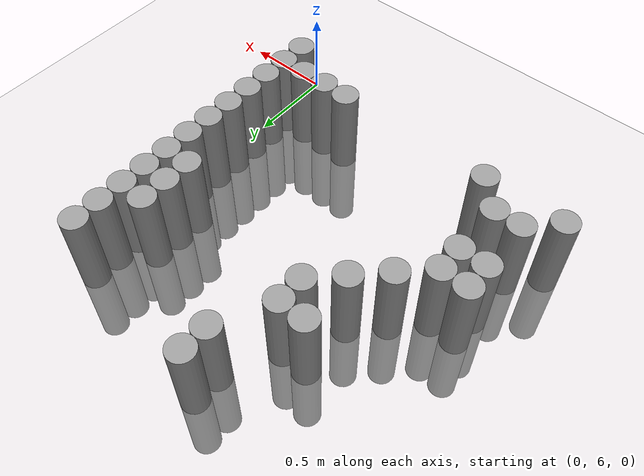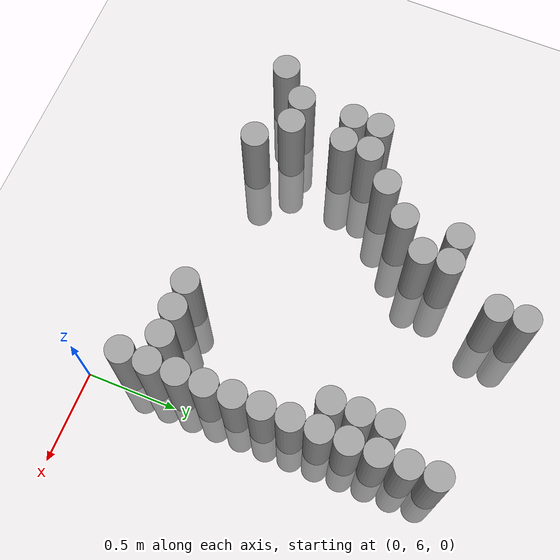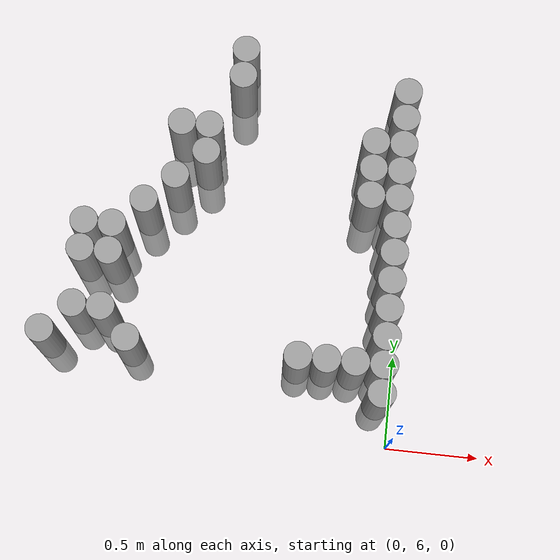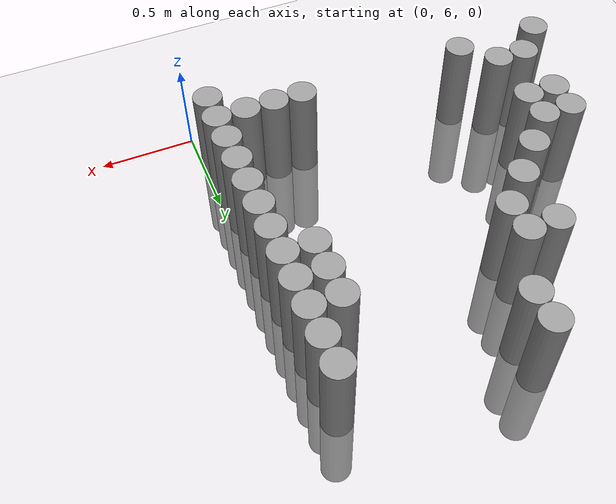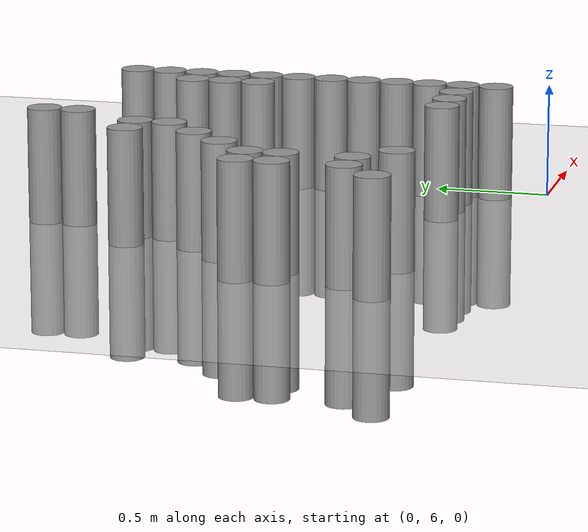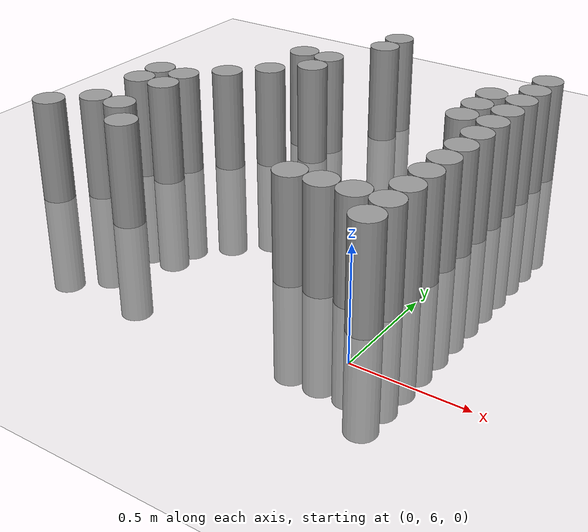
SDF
<sdf version="1.6">
 <world name="default">
  <model name="ground_plane">
   <static>1</static>
   <link name="link">
    <collision name="collision">
     <geometry><plane><normal>0 0 1</normal><size>100 100</size></plane></geometry>
     <surface><friction><ode><mu>100</mu><mu2>50</mu2></ode></friction></surface>
    </collision>
    <visual name="visual">
     <cast_shadows>0</cast_shadows>
     <geometry><plane><normal>0 0 1</normal><size>100 100</size></plane></geometry>
     <material>
      <script><uri>file://media/materials/scripts/gazebo.material</uri><name>Gazebo/Grey</name></script>
     </material>
    </visual>
   </link>
  </model>
  <model name="unit_cylinder_182">
   <pose>-1.875000 6.375000 0.000000 0.000000 0.000000 0.000000</pose>
   <link name="link">
    <inertial>
     <mass>1</mass>
     <inertia><ixx>0.145833</ixx><ixy>0</ixy><ixz>0</ixz><iyy>0.145833</iyy><iyz>0</iyz><izz>0.125</izz></inertia>
    </inertial>
    <collision name="collision">
     <geometry><cylinder><radius>0.075000</radius><length>1</length></cylinder></geometry>
    </collision>
    <visual name="visual">
     <geometry><cylinder><radius>0.075000</radius><length>1</length></cylinder></geometry>
     <material>
      <script><name>Gazebo/Grey</name><uri>file://media/materials/scripts/gazebo.material</uri></script>
     </material>
    </visual>
   </link>
  </model>
  <model name="unit_cylinder_184">
   <pose>-1.725000 6.525000 0.000000 0.000000 0.000000 0.000000</pose>
   <link name="link">
    <inertial>
     <mass>1</mass>
     <inertia><ixx>0.145833</ixx><ixy>0</ixy><ixz>0</ixz><iyy>0.145833</iyy><iyz>0</iyz><izz>0.125</izz></inertia>
    </inertial>
    <collision name="collision">
     <geometry><cylinder><radius>0.075000</radius><length>1</length></cylinder></geometry>
    </collision>
    <visual name="visual">
     <geometry><cylinder><radius>0.075000</radius><length>1</length></cylinder></geometry>
     <material>
      <script><name>Gazebo/Grey</name><uri>file://media/materials/scripts/gazebo.material</uri></script>
     </material>
    </visual>
   </link>
  </model>
  <model name="unit_cylinder_185">
   <pose>-1.725000 6.825000 0.000000 0.000000 0.000000 0.000000</pose>
   <link name="link">
    <inertial>
     <mass>1</mass>
     <inertia><ixx>0.145833</ixx><ixy>0</ixy><ixz>0</ixz><iyy>0.145833</iyy><iyz>0</iyz><izz>0.125</izz></inertia>
    </inertial>
    <collision name="collision">
     <geometry><cylinder><radius>0.075000</radius><length>1</length></cylinder></geometry>
    </collision>
    <visual name="visual">
     <geometry><cylinder><radius>0.075000</radius><length>1</length></cylinder></geometry>
     <material>
      <script><name>Gazebo/Grey</name><uri>file://media/materials/scripts/gazebo.material</uri></script>
     </material>
    </visual>
   </link>
  </model>
  <model name="unit_cylinder_186">
   <pose>-1.725000 6.975000 0.000000 0.000000 0.000000 0.000000</pose>
   <link name="link">
    <inertial>
     <mass>1</mass>
     <inertia><ixx>0.145833</ixx><ixy>0</ixy><ixz>0</ixz><iyy>0.145833</iyy><iyz>0</iyz><izz>0.125</izz></inertia>
    </inertial>
    <collision name="collision">
     <geometry><cylinder><radius>0.075000</radius><length>1</length></cylinder></geometry>
    </collision>
    <visual name="visual">
     <geometry><cylinder><radius>0.075000</radius><length>1</length></cylinder></geometry>
     <material>
      <script><name>Gazebo/Grey</name><uri>file://media/materials/scripts/gazebo.material</uri></script>
     </material>
    </visual>
   </link>
  </model>
  <model name="unit_cylinder_188">
   <pose>-1.575000 6.525000 0.000000 0.000000 0.000000 0.000000</pose>
   <link name="link">
    <inertial>
     <mass>1</mass>
     <inertia><ixx>0.145833</ixx><ixy>0</ixy><ixz>0</ixz><iyy>0.145833</iyy><iyz>0</iyz><izz>0.125</izz></inertia>
    </inertial>
    <collision name="collision">
     <geometry><cylinder><radius>0.075000</radius><length>1</length></cylinder></geometry>
    </collision>
    <visual name="visual">
     <geometry><cylinder><radius>0.075000</radius><length>1</length></cylinder></geometry>
     <material>
      <script><name>Gazebo/Grey</name><uri>file://media/materials/scripts/gazebo.material</uri></script>
     </material>
    </visual>
   </link>
  </model>
  <model name="unit_cylinder_189">
   <pose>-1.575000 6.825000 0.000000 0.000000 0.000000 0.000000</pose>
   <link name="link">
    <inertial>
     <mass>1</mass>
     <inertia><ixx>0.145833</ixx><ixy>0</ixy><ixz>0</ixz><iyy>0.145833</iyy><iyz>0</iyz><izz>0.125</izz></inertia>
    </inertial>
    <collision name="collision">
     <geometry><cylinder><radius>0.075000</radius><length>1</length></cylinder></geometry>
    </collision>
    <visual name="visual">
     <geometry><cylinder><radius>0.075000</radius><length>1</length></cylinder></geometry>
     <material>
      <script><name>Gazebo/Grey</name><uri>file://media/materials/scripts/gazebo.material</uri></script>
     </material>
    </visual>
   </link>
  </model>
  <model name="unit_cylinder_190">
   <pose>-1.575000 6.975000 0.000000 0.000000 0.000000 0.000000</pose>
   <link name="link">
    <inertial>
     <mass>1</mass>
     <inertia><ixx>0.145833</ixx><ixy>0</ixy><ixz>0</ixz><iyy>0.145833</iyy><iyz>0</iyz><izz>0.125</izz></inertia>
    </inertial>
    <collision name="collision">
     <geometry><cylinder><radius>0.075000</radius><length>1</length></cylinder></geometry>
    </collision>
    <visual name="visual">
     <geometry><cylinder><radius>0.075000</radius><length>1</length></cylinder></geometry>
     <material>
      <script><name>Gazebo/Grey</name><uri>file://media/materials/scripts/gazebo.material</uri></script>
     </material>
    </visual>
   </link>
  </model>
  <model name="unit_cylinder_191">
   <pose>-1.425000 6.375000 0.000000 0.000000 0.000000 0.000000</pose>
   <link name="link">
    <inertial>
     <mass>1</mass>
     <inertia><ixx>0.145833</ixx><ixy>0</ixy><ixz>0</ixz><iyy>0.145833</iyy><iyz>0</iyz><izz>0.125</izz></inertia>
    </inertial>
    <collision name="collision">
     <geometry><cylinder><radius>0.075000</radius><length>1</length></cylinder></geometry>
    </collision>
    <visual name="visual">
     <geometry><cylinder><radius>0.075000</radius><length>1</length></cylinder></geometry>
     <material>
      <script><name>Gazebo/Grey</name><uri>file://media/materials/scripts/gazebo.material</uri></script>
     </material>
    </visual>
   </link>
  </model>
  <model name="unit_cylinder_192">
   <pose>-1.425000 7.125000 0.000000 0.000000 0.000000 0.000000</pose>
   <link name="link">
    <inertial>
     <mass>1</mass>
     <inertia><ixx>0.145833</ixx><ixy>0</ixy><ixz>0</ixz><iyy>0.145833</iyy><iyz>0</iyz><izz>0.125</izz></inertia>
    </inertial>
    <collision name="collision">
     <geometry><cylinder><radius>0.075000</radius><length>1</length></cylinder></geometry>
    </collision>
    <visual name="visual">
     <geometry><cylinder><radius>0.075000</radius><length>1</length></cylinder></geometry>
     <material>
      <script><name>Gazebo/Grey</name><uri>file://media/materials/scripts/gazebo.material</uri></script>
     </material>
    </visual>
   </link>
  </model>
  <model name="unit_cylinder_193">
   <pose>-1.275000 7.275000 0.000000 0.000000 0.000000 0.000000</pose>
   <link name="link">
    <inertial>
     <mass>1</mass>
     <inertia><ixx>0.145833</ixx><ixy>0</ixy><ixz>0</ixz><iyy>0.145833</iyy><iyz>0</iyz><izz>0.125</izz></inertia>
    </inertial>
    <collision name="collision">
     <geometry><cylinder><radius>0.075000</radius><length>1</length></cylinder></geometry>
    </collision>
    <visual name="visual">
     <geometry><cylinder><radius>0.075000</radius><length>1</length></cylinder></geometry>
     <material>
      <script><name>Gazebo/Grey</name><uri>file://media/materials/scripts/gazebo.material</uri></script>
     </material>
    </visual>
   </link>
  </model>
  <model name="unit_cylinder_194">
   <pose>-1.275000 7.575000 0.000000 0.000000 0.000000 0.000000</pose>
   <link name="link">
    <inertial>
     <mass>1</mass>
     <inertia><ixx>0.145833</ixx><ixy>0</ixy><ixz>0</ixz><iyy>0.145833</iyy><iyz>0</iyz><izz>0.125</izz></inertia>
    </inertial>
    <collision name="collision">
     <geometry><cylinder><radius>0.075000</radius><length>1</length></cylinder></geometry>
    </collision>
    <visual name="visual">
     <geometry><cylinder><radius>0.075000</radius><length>1</length></cylinder></geometry>
     <material>
      <script><name>Gazebo/Grey</name><uri>file://media/materials/scripts/gazebo.material</uri></script>
     </material>
    </visual>
   </link>
  </model>
  <model name="unit_cylinder_195">
   <pose>-1.125000 7.425000 0.000000 0.000000 0.000000 0.000000</pose>
   <link name="link">
    <inertial>
     <mass>1</mass>
     <inertia><ixx>0.145833</ixx><ixy>0</ixy><ixz>0</ixz><iyy>0.145833</iyy><iyz>0</iyz><izz>0.125</izz></inertia>
    </inertial>
    <collision name="collision">
     <geometry><cylinder><radius>0.075000</radius><length>1</length></cylinder></geometry>
    </collision>
    <visual name="visual">
     <geometry><cylinder><radius>0.075000</radius><length>1</length></cylinder></geometry>
     <material>
      <script><name>Gazebo/Grey</name><uri>file://media/materials/scripts/gazebo.material</uri></script>
     </material>
    </visual>
   </link>
  </model>
  <model name="unit_cylinder_196">
   <pose>-1.125000 7.575000 0.000000 0.000000 0.000000 0.000000</pose>
   <link name="link">
    <inertial>
     <mass>1</mass>
     <inertia><ixx>0.145833</ixx><ixy>0</ixy><ixz>0</ixz><iyy>0.145833</iyy><iyz>0</iyz><izz>0.125</izz></inertia>
    </inertial>
    <collision name="collision">
     <geometry><cylinder><radius>0.075000</radius><length>1</length></cylinder></geometry>
    </collision>
    <visual name="visual">
     <geometry><cylinder><radius>0.075000</radius><length>1</length></cylinder></geometry>
     <material>
      <script><name>Gazebo/Grey</name><uri>file://media/materials/scripts/gazebo.material</uri></script>
     </material>
    </visual>
   </link>
  </model>
  <model name="unit_cylinder_197">
   <pose>-0.975000 7.875000 0.000000 0.000000 0.000000 0.000000</pose>
   <link name="link">
    <inertial>
     <mass>1</mass>
     <inertia><ixx>0.145833</ixx><ixy>0</ixy><ixz>0</ixz><iyy>0.145833</iyy><iyz>0</iyz><izz>0.125</izz></inertia>
    </inertial>
    <collision name="collision">
     <geometry><cylinder><radius>0.075000</radius><length>1</length></cylinder></geometry>
    </collision>
    <visual name="visual">
     <geometry><cylinder><radius>0.075000</radius><length>1</length></cylinder></geometry>
     <material>
      <script><name>Gazebo/Grey</name><uri>file://media/materials/scripts/gazebo.material</uri></script>
     </material>
    </visual>
   </link>
  </model>
  <model name="unit_cylinder_198">
   <pose>-0.975000 8.025000 0.000000 0.000000 0.000000 0.000000</pose>
   <link name="link">
    <inertial>
     <mass>1</mass>
     <inertia><ixx>0.145833</ixx><ixy>0</ixy><ixz>0</ixz><iyy>0.145833</iyy><iyz>0</iyz><izz>0.125</izz></inertia>
    </inertial>
    <collision name="collision">
     <geometry><cylinder><radius>0.075000</radius><length>1</length></cylinder></geometry>
    </collision>
    <visual name="visual">
     <geometry><cylinder><radius>0.075000</radius><length>1</length></cylinder></geometry>
     <material>
      <script><name>Gazebo/Grey</name><uri>file://media/materials/scripts/gazebo.material</uri></script>
     </material>
    </visual>
   </link>
  </model>
  <model name="unit_cylinder_212">
   <pose>-0.525000 6.375000 0.000000 0.000000 0.000000 0.000000</pose>
   <link name="link">
    <inertial>
     <mass>1</mass>
     <inertia><ixx>0.145833</ixx><ixy>0</ixy><ixz>0</ixz><iyy>0.145833</iyy><iyz>0</iyz><izz>0.125</izz></inertia>
    </inertial>
    <collision name="collision">
     <geometry><cylinder><radius>0.075000</radius><length>1</length></cylinder></geometry>
    </collision>
    <visual name="visual">
     <geometry><cylinder><radius>0.075000</radius><length>1</length></cylinder></geometry>
     <material>
      <script><name>Gazebo/Grey</name><uri>file://media/materials/scripts/gazebo.material</uri></script>
     </material>
    </visual>
   </link>
  </model>
  <model name="unit_cylinder_216">
   <pose>-0.375000 6.375000 0.000000 0.000000 0.000000 0.000000</pose>
   <link name="link">
    <inertial>
     <mass>1</mass>
     <inertia><ixx>0.145833</ixx><ixy>0</ixy><ixz>0</ixz><iyy>0.145833</iyy><iyz>0</iyz><izz>0.125</izz></inertia>
    </inertial>
    <collision name="collision">
     <geometry><cylinder><radius>0.075000</radius><length>1</length></cylinder></geometry>
    </collision>
    <visual name="visual">
     <geometry><cylinder><radius>0.075000</radius><length>1</length></cylinder></geometry>
     <material>
      <script><name>Gazebo/Grey</name><uri>file://media/materials/scripts/gazebo.material</uri></script>
     </material>
    </visual>
   </link>
  </model>
  <model name="unit_cylinder_223">
   <pose>-0.225000 6.375000 0.000000 0.000000 0.000000 0.000000</pose>
   <link name="link">
    <inertial>
     <mass>1</mass>
     <inertia><ixx>0.145833</ixx><ixy>0</ixy><ixz>0</ixz><iyy>0.145833</iyy><iyz>0</iyz><izz>0.125</izz></inertia>
    </inertial>
    <collision name="collision">
     <geometry><cylinder><radius>0.075000</radius><length>1</length></cylinder></geometry>
    </collision>
    <visual name="visual">
     <geometry><cylinder><radius>0.075000</radius><length>1</length></cylinder></geometry>
     <material>
      <script><name>Gazebo/Grey</name><uri>file://media/materials/scripts/gazebo.material</uri></script>
     </material>
    </visual>
   </link>
  </model>
  <model name="unit_cylinder_224">
   <pose>-0.225000 7.275000 0.000000 0.000000 0.000000 0.000000</pose>
   <link name="link">
    <inertial>
     <mass>1</mass>
     <inertia><ixx>0.145833</ixx><ixy>0</ixy><ixz>0</ixz><iyy>0.145833</iyy><iyz>0</iyz><izz>0.125</izz></inertia>
    </inertial>
    <collision name="collision">
     <geometry><cylinder><radius>0.075000</radius><length>1</length></cylinder></geometry>
    </collision>
    <visual name="visual">
     <geometry><cylinder><radius>0.075000</radius><length>1</length></cylinder></geometry>
     <material>
      <script><name>Gazebo/Grey</name><uri>file://media/materials/scripts/gazebo.material</uri></script>
     </material>
    </visual>
   </link>
  </model>
  <model name="unit_cylinder_225">
   <pose>-0.225000 7.425000 0.000000 0.000000 0.000000 0.000000</pose>
   <link name="link">
    <inertial>
     <mass>1</mass>
     <inertia><ixx>0.145833</ixx><ixy>0</ixy><ixz>0</ixz><iyy>0.145833</iyy><iyz>0</iyz><izz>0.125</izz></inertia>
    </inertial>
    <collision name="collision">
     <geometry><cylinder><radius>0.075000</radius><length>1</length></cylinder></geometry>
    </collision>
    <visual name="visual">
     <geometry><cylinder><radius>0.075000</radius><length>1</length></cylinder></geometry>
     <material>
      <script><name>Gazebo/Grey</name><uri>file://media/materials/scripts/gazebo.material</uri></script>
     </material>
    </visual>
   </link>
  </model>
  <model name="unit_cylinder_226">
   <pose>-0.225000 7.575000 0.000000 0.000000 0.000000 0.000000</pose>
   <link name="link">
    <inertial>
     <mass>1</mass>
     <inertia><ixx>0.145833</ixx><ixy>0</ixy><ixz>0</ixz><iyy>0.145833</iyy><iyz>0</iyz><izz>0.125</izz></inertia>
    </inertial>
    <collision name="collision">
     <geometry><cylinder><radius>0.075000</radius><length>1</length></cylinder></geometry>
    </collision>
    <visual name="visual">
     <geometry><cylinder><radius>0.075000</radius><length>1</length></cylinder></geometry>
     <material>
      <script><name>Gazebo/Grey</name><uri>file://media/materials/scripts/gazebo.material</uri></script>
     </material>
    </visual>
   </link>
  </model>
  <model name="unit_cylinder_238">
   <pose>-0.075000 6.225000 0.000000 0.000000 0.000000 0.000000</pose>
   <link name="link">
    <inertial>
     <mass>1</mass>
     <inertia><ixx>0.145833</ixx><ixy>0</ixy><ixz>0</ixz><iyy>0.145833</iyy><iyz>0</iyz><izz>0.125</izz></inertia>
    </inertial>
    <collision name="collision">
     <geometry><cylinder><radius>0.075000</radius><length>1</length></cylinder></geometry>
    </collision>
    <visual name="visual">
     <geometry><cylinder><radius>0.075000</radius><length>1</length></cylinder></geometry>
     <material>
      <script><name>Gazebo/Grey</name><uri>file://media/materials/scripts/gazebo.material</uri></script>
     </material>
    </visual>
   </link>
  </model>
  <model name="unit_cylinder_239">
   <pose>-0.075000 6.375000 0.000000 0.000000 0.000000 0.000000</pose>
   <link name="link">
    <inertial>
     <mass>1</mass>
     <inertia><ixx>0.145833</ixx><ixy>0</ixy><ixz>0</ixz><iyy>0.145833</iyy><iyz>0</iyz><izz>0.125</izz></inertia>
    </inertial>
    <collision name="collision">
     <geometry><cylinder><radius>0.075000</radius><length>1</length></cylinder></geometry>
    </collision>
    <visual name="visual">
     <geometry><cylinder><radius>0.075000</radius><length>1</length></cylinder></geometry>
     <material>
      <script><name>Gazebo/Grey</name><uri>file://media/materials/scripts/gazebo.material</uri></script>
     </material>
    </visual>
   </link>
  </model>
  <model name="unit_cylinder_240">
   <pose>-0.075000 6.525000 0.000000 0.000000 0.000000 0.000000</pose>
   <link name="link">
    <inertial>
     <mass>1</mass>
     <inertia><ixx>0.145833</ixx><ixy>0</ixy><ixz>0</ixz><iyy>0.145833</iyy><iyz>0</iyz><izz>0.125</izz></inertia>
    </inertial>
    <collision name="collision">
     <geometry><cylinder><radius>0.075000</radius><length>1</length></cylinder></geometry>
    </collision>
    <visual name="visual">
     <geometry><cylinder><radius>0.075000</radius><length>1</length></cylinder></geometry>
     <material>
      <script><name>Gazebo/Grey</name><uri>file://media/materials/scripts/gazebo.material</uri></script>
     </material>
    </visual>
   </link>
  </model>
  <model name="unit_cylinder_241">
   <pose>-0.075000 6.675000 0.000000 0.000000 0.000000 0.000000</pose>
   <link name="link">
    <inertial>
     <mass>1</mass>
     <inertia><ixx>0.145833</ixx><ixy>0</ixy><ixz>0</ixz><iyy>0.145833</iyy><iyz>0</iyz><izz>0.125</izz></inertia>
    </inertial>
    <collision name="collision">
     <geometry><cylinder><radius>0.075000</radius><length>1</length></cylinder></geometry>
    </collision>
    <visual name="visual">
     <geometry><cylinder><radius>0.075000</radius><length>1</length></cylinder></geometry>
     <material>
      <script><name>Gazebo/Grey</name><uri>file://media/materials/scripts/gazebo.material</uri></script>
     </material>
    </visual>
   </link>
  </model>
  <model name="unit_cylinder_242">
   <pose>-0.075000 6.825000 0.000000 0.000000 0.000000 0.000000</pose>
   <link name="link">
    <inertial>
     <mass>1</mass>
     <inertia><ixx>0.145833</ixx><ixy>0</ixy><ixz>0</ixz><iyy>0.145833</iyy><iyz>0</iyz><izz>0.125</izz></inertia>
    </inertial>
    <collision name="collision">
     <geometry><cylinder><radius>0.075000</radius><length>1</length></cylinder></geometry>
    </collision>
    <visual name="visual">
     <geometry><cylinder><radius>0.075000</radius><length>1</length></cylinder></geometry>
     <material>
      <script><name>Gazebo/Grey</name><uri>file://media/materials/scripts/gazebo.material</uri></script>
     </material>
    </visual>
   </link>
  </model>
  <model name="unit_cylinder_243">
   <pose>-0.075000 6.975000 0.000000 0.000000 0.000000 0.000000</pose>
   <link name="link">
    <inertial>
     <mass>1</mass>
     <inertia><ixx>0.145833</ixx><ixy>0</ixy><ixz>0</ixz><iyy>0.145833</iyy><iyz>0</iyz><izz>0.125</izz></inertia>
    </inertial>
    <collision name="collision">
     <geometry><cylinder><radius>0.075000</radius><length>1</length></cylinder></geometry>
    </collision>
    <visual name="visual">
     <geometry><cylinder><radius>0.075000</radius><length>1</length></cylinder></geometry>
     <material>
      <script><name>Gazebo/Grey</name><uri>file://media/materials/scripts/gazebo.material</uri></script>
     </material>
    </visual>
   </link>
  </model>
  <model name="unit_cylinder_244">
   <pose>-0.075000 7.125000 0.000000 0.000000 0.000000 0.000000</pose>
   <link name="link">
    <inertial>
     <mass>1</mass>
     <inertia><ixx>0.145833</ixx><ixy>0</ixy><ixz>0</ixz><iyy>0.145833</iyy><iyz>0</iyz><izz>0.125</izz></inertia>
    </inertial>
    <collision name="collision">
     <geometry><cylinder><radius>0.075000</radius><length>1</length></cylinder></geometry>
    </collision>
    <visual name="visual">
     <geometry><cylinder><radius>0.075000</radius><length>1</length></cylinder></geometry>
     <material>
      <script><name>Gazebo/Grey</name><uri>file://media/materials/scripts/gazebo.material</uri></script>
     </material>
    </visual>
   </link>
  </model>
  <model name="unit_cylinder_245">
   <pose>-0.075000 7.275000 0.000000 0.000000 0.000000 0.000000</pose>
   <link name="link">
    <inertial>
     <mass>1</mass>
     <inertia><ixx>0.145833</ixx><ixy>0</ixy><ixz>0</ixz><iyy>0.145833</iyy><iyz>0</iyz><izz>0.125</izz></inertia>
    </inertial>
    <collision name="collision">
     <geometry><cylinder><radius>0.075000</radius><length>1</length></cylinder></geometry>
    </collision>
    <visual name="visual">
     <geometry><cylinder><radius>0.075000</radius><length>1</length></cylinder></geometry>
     <material>
      <script><name>Gazebo/Grey</name><uri>file://media/materials/scripts/gazebo.material</uri></script>
     </material>
    </visual>
   </link>
  </model>
  <model name="unit_cylinder_246">
   <pose>-0.075000 7.425000 0.000000 0.000000 0.000000 0.000000</pose>
   <link name="link">
    <inertial>
     <mass>1</mass>
     <inertia><ixx>0.145833</ixx><ixy>0</ixy><ixz>0</ixz><iyy>0.145833</iyy><iyz>0</iyz><izz>0.125</izz></inertia>
    </inertial>
    <collision name="collision">
     <geometry><cylinder><radius>0.075000</radius><length>1</length></cylinder></geometry>
    </collision>
    <visual name="visual">
     <geometry><cylinder><radius>0.075000</radius><length>1</length></cylinder></geometry>
     <material>
      <script><name>Gazebo/Grey</name><uri>file://media/materials/scripts/gazebo.material</uri></script>
     </material>
    </visual>
   </link>
  </model>
  <model name="unit_cylinder_247">
   <pose>-0.075000 7.575000 0.000000 0.000000 0.000000 0.000000</pose>
   <link name="link">
    <inertial>
     <mass>1</mass>
     <inertia><ixx>0.145833</ixx><ixy>0</ixy><ixz>0</ixz><iyy>0.145833</iyy><iyz>0</iyz><izz>0.125</izz></inertia>
    </inertial>
    <collision name="collision">
     <geometry><cylinder><radius>0.075000</radius><length>1</length></cylinder></geometry>
    </collision>
    <visual name="visual">
     <geometry><cylinder><radius>0.075000</radius><length>1</length></cylinder></geometry>
     <material>
      <script><name>Gazebo/Grey</name><uri>file://media/materials/scripts/gazebo.material</uri></script>
     </material>
    </visual>
   </link>
  </model>
  <model name="unit_cylinder_248">
   <pose>-0.075000 7.725000 0.000000 0.000000 0.000000 0.000000</pose>
   <link name="link">
    <inertial>
     <mass>1</mass>
     <inertia><ixx>0.145833</ixx><ixy>0</ixy><ixz>0</ixz><iyy>0.145833</iyy><iyz>0</iyz><izz>0.125</izz></inertia>
    </inertial>
    <collision name="collision">
     <geometry><cylinder><radius>0.075000</radius><length>1</length></cylinder></geometry>
    </collision>
    <visual name="visual">
     <geometry><cylinder><radius>0.075000</radius><length>1</length></cylinder></geometry>
     <material>
      <script><name>Gazebo/Grey</name><uri>file://media/materials/scripts/gazebo.material</uri></script>
     </material>
    </visual>
   </link>
  </model>
  <model name="unit_cylinder_249">
   <pose>-0.075000 7.875000 0.000000 0.000000 0.000000 0.000000</pose>
   <link name="link">
    <inertial>
     <mass>1</mass>
     <inertia><ixx>0.145833</ixx><ixy>0</ixy><ixz>0</ixz><iyy>0.145833</iyy><iyz>0</iyz><izz>0.125</izz></inertia>
    </inertial>
    <collision name="collision">
     <geometry><cylinder><radius>0.075000</radius><length>1</length></cylinder></geometry>
    </collision>
    <visual name="visual">
     <geometry><cylinder><radius>0.075000</radius><length>1</length></cylinder></geometry>
     <material>
      <script><name>Gazebo/Grey</name><uri>file://media/materials/scripts/gazebo.material</uri></script>
     </material>
    </visual>
   </link>
  </model>
 </world>
</sdf>
